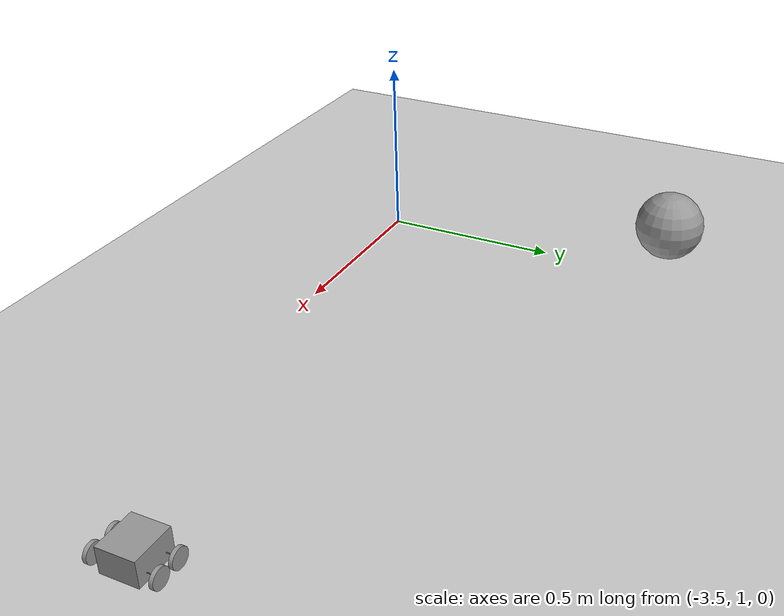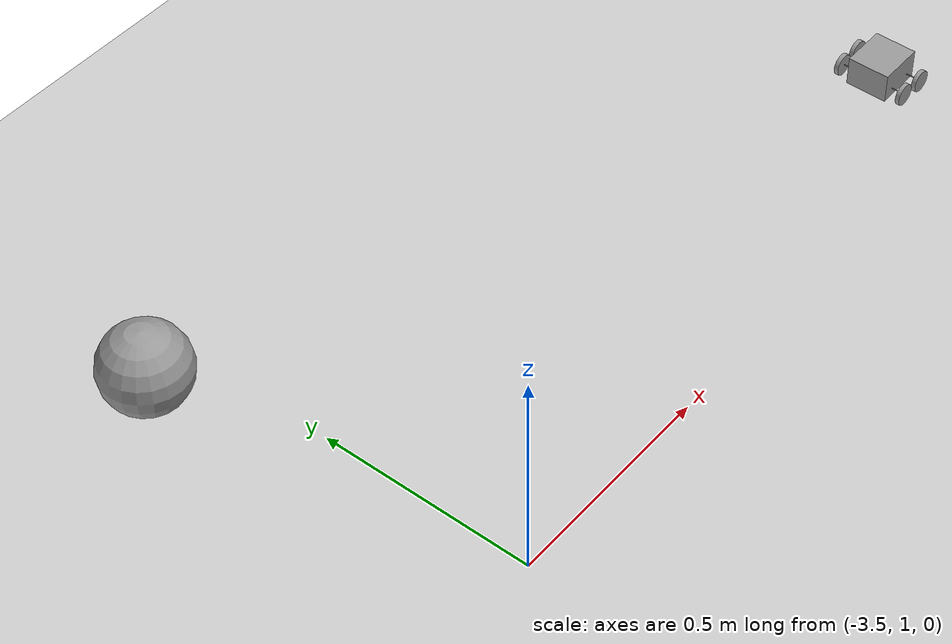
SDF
<sdf version="1.6">
 <world name="default">
  <model name="ground_plane">
   <static>1</static>
   <link name="link">
    <collision name="collision">
     <geometry><plane><normal>0 0 1</normal><size>100 100</size></plane></geometry>
     <surface>
      <contact><collide_bitmask>65535</collide_bitmask></contact>
      <friction><ode><mu>100</mu><mu2>50</mu2></ode></friction>
     </surface>
    </collision>
    <visual name="visual">
     <cast_shadows>0</cast_shadows>
     <geometry><plane><normal>0 0 1</normal><size>100 100</size></plane></geometry>
     <material>
      <script><uri>file://media/materials/scripts/gazebo.material</uri><name>Gazebo/Grey</name></script>
     </material>
    </visual>
   </link>
  </model>
  <model name="Scout">
   <link name="link_5">
    <pose>0.000124 0.000467 0.012036 0 1.5707 0</pose>
    <inertial>
     <mass>1</mass>
     <inertia>
      <ixx>0.166667</ixx>
      <ixy>0</ixy>
      <ixz>0</ixz>
      <iyy>0.166667</iyy>
      <iyz>0</iyz>
      <izz>0.166667</izz>
     </inertia>
    </inertial>
    <visual name="visual">
     <geometry><box><size>0.07 0.1 0.11</size></box></geometry>
     <material>
      <lighting>1</lighting>
      <script><uri>file://media/materials/scripts/gazebo.material</uri><name>Gazebo/Grey</name></script>
      <shader type="pixel"><normal_map>__default__</normal_map></shader>
      <ambient>0.3 0.3 0.3 1</ambient>
      <diffuse>0.7 0.7 0.7 1</diffuse>
      <specular>0.01 0.01 0.01 1</specular>
      <emissive>0 0 0 1</emissive>
     </material>
    </visual>
    <collision name="collision">
     <geometry><box><size>0.07 0.1 0.11</size></box></geometry>
     <surface>
      <friction>
       <ode><mu>1</mu><mu2>1</mu2><fdir1>0 0 0</fdir1><slip1>0</slip1><slip2>0</slip2></ode>
       <torsional>
        <coefficient>1</coefficient>
        <patch_radius>0</patch_radius>
        <surface_radius>0</surface_radius>
        <use_patch_radius>1</use_patch_radius>
        <ode><slip>0</slip></ode>
       </torsional>
      </friction>
      <bounce><restitution_coefficient>0</restitution_coefficient><threshold>1e+06</threshold></bounce>
      <contact>
       <collide_without_contact>0</collide_without_contact>
       <collide_without_contact_bitmask>1</collide_without_contact_bitmask>
       <collide_bitmask>1</collide_bitmask>
       <ode>
        <soft_cfm>0</soft_cfm>
        <soft_erp>0.2</soft_erp>
        <kp>1e+13</kp>
        <kd>1</kd>
        <max_vel>0.01</max_vel>
        <min_depth>0</min_depth>
       </ode>
       <bullet>
        <split_impulse>1</split_impulse>
        <split_impulse_penetration_threshold>-0.01</split_impulse_penetration_threshold>
        <soft_cfm>0</soft_cfm>
        <soft_erp>0.2</soft_erp>
        <kp>1e+13</kp>
        <kd>1</kd>
       </bullet>
      </contact>
     </surface>
    </collision>
   </link>
   <link name="link_6">
    <pose>0.030124 -0.082817 -0.002561 1.5707 -0 0</pose>
    <inertial>
     <mass>1</mass>
     <inertia><ixx>0.145833</ixx><ixy>0</ixy><ixz>0</ixz><iyy>0.145833</iyy><iyz>0</iyz><izz>0.125</izz></inertia>
    </inertial>
    <visual name="visual">
     <geometry><cylinder><radius>0.0254</radius><length>0.01</length></cylinder></geometry>
     <material>
      <lighting>1</lighting>
      <script><uri>file://media/materials/scripts/gazebo.material</uri><name>Gazebo/Grey</name></script>
      <shader type="pixel"><normal_map>__default__</normal_map></shader>
      <ambient>0.3 0.3 0.3 1</ambient>
      <diffuse>0.7 0.7 0.7 1</diffuse>
      <specular>0.01 0.01 0.01 1</specular>
      <emissive>0 0 0 1</emissive>
     </material>
    </visual>
    <collision name="collision">
     <geometry><cylinder><radius>0.0254</radius><length>0.01</length></cylinder></geometry>
     <surface>
      <friction>
       <ode><mu>1</mu><mu2>1</mu2><fdir1>0 0 0</fdir1><slip1>0</slip1><slip2>0</slip2></ode>
       <torsional>
        <coefficient>1</coefficient>
        <patch_radius>0</patch_radius>
        <surface_radius>0</surface_radius>
        <use_patch_radius>1</use_patch_radius>
        <ode><slip>0</slip></ode>
       </torsional>
      </friction>
      <bounce><restitution_coefficient>0</restitution_coefficient><threshold>1e+06</threshold></bounce>
      <contact>
       <collide_without_contact>0</collide_without_contact>
       <collide_without_contact_bitmask>1</collide_without_contact_bitmask>
       <collide_bitmask>1</collide_bitmask>
       <ode>
        <soft_cfm>0</soft_cfm>
        <soft_erp>0.2</soft_erp>
        <kp>1e+13</kp>
        <kd>1</kd>
        <max_vel>0.01</max_vel>
        <min_depth>0</min_depth>
       </ode>
       <bullet>
        <split_impulse>1</split_impulse>
        <split_impulse_penetration_threshold>-0.01</split_impulse_penetration_threshold>
        <soft_cfm>0</soft_cfm>
        <soft_erp>0.2</soft_erp>
        <kp>1e+13</kp>
        <kd>1</kd>
       </bullet>
      </contact>
     </surface>
    </collision>
   </link>
   <link name="link_6_clone">
    <pose>-0.029876 -0.079536 -0.002561 1.5707 -0 0</pose>
    <inertial>
     <mass>1</mass>
     <inertia><ixx>0.145833</ixx><ixy>0</ixy><ixz>0</ixz><iyy>0.145833</iyy><iyz>0</iyz><izz>0.125</izz></inertia>
    </inertial>
    <visual name="visual">
     <geometry><cylinder><radius>0.0254</radius><length>0.01</length></cylinder></geometry>
     <material>
      <lighting>1</lighting>
      <script><uri>file://media/materials/scripts/gazebo.material</uri><name>Gazebo/Grey</name></script>
      <shader type="pixel"><normal_map>__default__</normal_map></shader>
      <ambient>0.3 0.3 0.3 1</ambient>
      <diffuse>0.7 0.7 0.7 1</diffuse>
      <specular>0.01 0.01 0.01 1</specular>
      <emissive>0 0 0 1</emissive>
     </material>
    </visual>
    <collision name="collision">
     <geometry><cylinder><radius>0.0254</radius><length>0.01</length></cylinder></geometry>
     <surface>
      <friction>
       <ode><mu>1</mu><mu2>1</mu2><fdir1>0 0 0</fdir1><slip1>0</slip1><slip2>0</slip2></ode>
       <torsional>
        <coefficient>1</coefficient>
        <patch_radius>0</patch_radius>
        <surface_radius>0</surface_radius>
        <use_patch_radius>1</use_patch_radius>
        <ode><slip>0</slip></ode>
       </torsional>
      </friction>
      <bounce><restitution_coefficient>0</restitution_coefficient><threshold>1e+06</threshold></bounce>
      <contact>
       <collide_without_contact>0</collide_without_contact>
       <collide_without_contact_bitmask>1</collide_without_contact_bitmask>
       <collide_bitmask>1</collide_bitmask>
       <ode>
        <soft_cfm>0</soft_cfm>
        <soft_erp>0.2</soft_erp>
        <kp>1e+13</kp>
        <kd>1</kd>
        <max_vel>0.01</max_vel>
        <min_depth>0</min_depth>
       </ode>
       <bullet>
        <split_impulse>1</split_impulse>
        <split_impulse_penetration_threshold>-0.01</split_impulse_penetration_threshold>
        <soft_cfm>0</soft_cfm>
        <soft_erp>0.2</soft_erp>
        <kp>1e+13</kp>
        <kd>1</kd>
       </bullet>
      </contact>
     </surface>
    </collision>
   </link>
   <link name="link_6_clone_0">
    <pose>0.02967 0.080483 -0.002563 1.5707 -0 0</pose>
    <inertial>
     <mass>1</mass>
     <inertia><ixx>0.145833</ixx><ixy>0</ixy><ixz>0</ixz><iyy>0.145833</iyy><iyz>0</iyz><izz>0.125</izz></inertia>
    </inertial>
    <visual name="visual">
     <geometry><cylinder><radius>0.0254</radius><length>0.01</length></cylinder></geometry>
     <material>
      <lighting>1</lighting>
      <script><uri>file://media/materials/scripts/gazebo.material</uri><name>Gazebo/Grey</name></script>
      <shader type="pixel"><normal_map>__default__</normal_map></shader>
      <ambient>0.3 0.3 0.3 1</ambient>
      <diffuse>0.7 0.7 0.7 1</diffuse>
      <specular>0.01 0.01 0.01 1</specular>
      <emissive>0 0 0 1</emissive>
     </material>
    </visual>
    <collision name="collision">
     <geometry><cylinder><radius>0.0254</radius><length>0.01</length></cylinder></geometry>
     <surface>
      <friction>
       <ode><mu>1</mu><mu2>1</mu2><fdir1>0 0 0</fdir1><slip1>0</slip1><slip2>0</slip2></ode>
       <torsional>
        <coefficient>1</coefficient>
        <patch_radius>0</patch_radius>
        <surface_radius>0</surface_radius>
        <use_patch_radius>1</use_patch_radius>
        <ode><slip>0</slip></ode>
       </torsional>
      </friction>
      <bounce><restitution_coefficient>0</restitution_coefficient><threshold>1e+06</threshold></bounce>
      <contact>
       <collide_without_contact>0</collide_without_contact>
       <collide_without_contact_bitmask>1</collide_without_contact_bitmask>
       <collide_bitmask>1</collide_bitmask>
       <ode>
        <soft_cfm>0</soft_cfm>
        <soft_erp>0.2</soft_erp>
        <kp>1e+13</kp>
        <kd>1</kd>
        <max_vel>0.01</max_vel>
        <min_depth>0</min_depth>
       </ode>
       <bullet>
        <split_impulse>1</split_impulse>
        <split_impulse_penetration_threshold>-0.01</split_impulse_penetration_threshold>
        <soft_cfm>0</soft_cfm>
        <soft_erp>0.2</soft_erp>
        <kp>1e+13</kp>
        <kd>1</kd>
       </bullet>
      </contact>
     </surface>
    </collision>
   </link>
   <link name="link_6_clone_1">
    <pose>-0.029876 0.080469 -0.002563 1.5707 -0 0</pose>
    <inertial>
     <mass>1</mass>
     <inertia><ixx>0.145833</ixx><ixy>0</ixy><ixz>0</ixz><iyy>0.145833</iyy><iyz>0</iyz><izz>0.125</izz></inertia>
    </inertial>
    <visual name="visual">
     <geometry><cylinder><radius>0.0254</radius><length>0.01</length></cylinder></geometry>
     <material>
      <lighting>1</lighting>
      <script><uri>file://media/materials/scripts/gazebo.material</uri><name>Gazebo/Grey</name></script>
      <shader type="pixel"><normal_map>__default__</normal_map></shader>
      <ambient>0.3 0.3 0.3 1</ambient>
      <diffuse>0.7 0.7 0.7 1</diffuse>
      <specular>0.01 0.01 0.01 1</specular>
      <emissive>0 0 0 1</emissive>
     </material>
    </visual>
    <collision name="collision">
     <geometry><cylinder><radius>0.0254</radius><length>0.01</length></cylinder></geometry>
     <surface>
      <friction>
       <ode><mu>1</mu><mu2>1</mu2><fdir1>0 0 0</fdir1><slip1>0</slip1><slip2>0</slip2></ode>
       <torsional>
        <coefficient>1</coefficient>
        <patch_radius>0</patch_radius>
        <surface_radius>0</surface_radius>
        <use_patch_radius>1</use_patch_radius>
        <ode><slip>0</slip></ode>
       </torsional>
      </friction>
      <bounce><restitution_coefficient>0</restitution_coefficient><threshold>1e+06</threshold></bounce>
      <contact>
       <collide_without_contact>0</collide_without_contact>
       <collide_without_contact_bitmask>1</collide_without_contact_bitmask>
       <collide_bitmask>1</collide_bitmask>
       <ode>
        <soft_cfm>0</soft_cfm>
        <soft_erp>0.2</soft_erp>
        <kp>1e+13</kp>
        <kd>1</kd>
        <max_vel>0.01</max_vel>
        <min_depth>0</min_depth>
       </ode>
       <bullet>
        <split_impulse>1</split_impulse>
        <split_impulse_penetration_threshold>-0.01</split_impulse_penetration_threshold>
        <soft_cfm>0</soft_cfm>
        <soft_erp>0.2</soft_erp>
        <kp>1e+13</kp>
        <kd>1</kd>
       </bullet>
      </contact>
     </surface>
    </collision>
   </link>
   <link name="link_7">
    <pose>0.029712 0.000467 -0.000894 1.5707 -0 0</pose>
    <inertial>
     <mass>1</mass>
     <inertia><ixx>0.145833</ixx><ixy>0</ixy><ixz>0</ixz><iyy>0.145833</iyy><iyz>0</iyz><izz>0.125</izz></inertia>
    </inertial>
    <visual name="visual">
     <geometry><cylinder><radius>0.001</radius><length>0.15</length></cylinder></geometry>
     <material>
      <lighting>1</lighting>
      <script><uri>file://media/materials/scripts/gazebo.material</uri><name>Gazebo/Grey</name></script>
      <shader type="pixel"><normal_map>__default__</normal_map></shader>
      <ambient>0.3 0.3 0.3 1</ambient>
      <diffuse>0.7 0.7 0.7 1</diffuse>
      <specular>0.01 0.01 0.01 1</specular>
      <emissive>0 0 0 1</emissive>
     </material>
    </visual>
    <collision name="collision">
     <geometry><cylinder><radius>0.001</radius><length>0.15</length></cylinder></geometry>
     <surface>
      <friction>
       <ode><mu>1</mu><mu2>1</mu2><fdir1>0 0 0</fdir1><slip1>0</slip1><slip2>0</slip2></ode>
       <torsional>
        <coefficient>1</coefficient>
        <patch_radius>0</patch_radius>
        <surface_radius>0</surface_radius>
        <use_patch_radius>1</use_patch_radius>
        <ode><slip>0</slip></ode>
       </torsional>
      </friction>
      <bounce><restitution_coefficient>0</restitution_coefficient><threshold>1e+06</threshold></bounce>
      <contact>
       <collide_without_contact>0</collide_without_contact>
       <collide_without_contact_bitmask>1</collide_without_contact_bitmask>
       <collide_bitmask>1</collide_bitmask>
       <ode>
        <soft_cfm>0</soft_cfm>
        <soft_erp>0.2</soft_erp>
        <kp>1e+13</kp>
        <kd>1</kd>
        <max_vel>0.01</max_vel>
        <min_depth>0</min_depth>
       </ode>
       <bullet>
        <split_impulse>1</split_impulse>
        <split_impulse_penetration_threshold>-0.01</split_impulse_penetration_threshold>
        <soft_cfm>0</soft_cfm>
        <soft_erp>0.2</soft_erp>
        <kp>1e+13</kp>
        <kd>1</kd>
       </bullet>
      </contact>
     </surface>
    </collision>
   </link>
   <link name="link_7_clone">
    <pose>-0.029876 0.000467 -0.000894 1.5707 -0 0</pose>
    <inertial>
     <mass>1</mass>
     <inertia><ixx>0.145833</ixx><ixy>0</ixy><ixz>0</ixz><iyy>0.145833</iyy><iyz>0</iyz><izz>0.125</izz></inertia>
    </inertial>
    <visual name="visual">
     <geometry><cylinder><radius>0.001</radius><length>0.15</length></cylinder></geometry>
     <material>
      <lighting>1</lighting>
      <script><uri>file://media/materials/scripts/gazebo.material</uri><name>Gazebo/Grey</name></script>
      <shader type="pixel"><normal_map>__default__</normal_map></shader>
      <ambient>0.3 0.3 0.3 1</ambient>
      <diffuse>0.7 0.7 0.7 1</diffuse>
      <specular>0.01 0.01 0.01 1</specular>
      <emissive>0 0 0 1</emissive>
     </material>
    </visual>
    <collision name="collision">
     <geometry><cylinder><radius>0.001</radius><length>0.15</length></cylinder></geometry>
     <surface>
      <friction>
       <ode><mu>1</mu><mu2>1</mu2><fdir1>0 0 0</fdir1><slip1>0</slip1><slip2>0</slip2></ode>
       <torsional>
        <coefficient>1</coefficient>
        <patch_radius>0</patch_radius>
        <surface_radius>0</surface_radius>
        <use_patch_radius>1</use_patch_radius>
        <ode><slip>0</slip></ode>
       </torsional>
      </friction>
      <bounce><restitution_coefficient>0</restitution_coefficient><threshold>1e+06</threshold></bounce>
      <contact>
       <collide_without_contact>0</collide_without_contact>
       <collide_without_contact_bitmask>1</collide_without_contact_bitmask>
       <collide_bitmask>1</collide_bitmask>
       <ode>
        <soft_cfm>0</soft_cfm>
        <soft_erp>0.2</soft_erp>
        <kp>1e+13</kp>
        <kd>1</kd>
        <max_vel>0.01</max_vel>
        <min_depth>0</min_depth>
       </ode>
       <bullet>
        <split_impulse>1</split_impulse>
        <split_impulse_penetration_threshold>-0.01</split_impulse_penetration_threshold>
        <soft_cfm>0</soft_cfm>
        <soft_erp>0.2</soft_erp>
        <kp>1e+13</kp>
        <kd>1</kd>
       </bullet>
      </contact>
     </surface>
    </collision>
   </link>
   <joint name="link_5_JOINT_13" type="fixed">
    <parent>link_5</parent>
    <child>link_7</child>
    <physics>
     <ode><limit><cfm>0</cfm><erp>0.2</erp></limit><suspension><cfm>0</cfm><erp>0.2</erp></suspension></ode>
    </physics>
   </joint>
   <joint name="link_5_JOINT_14" type="fixed">
    <parent>link_5</parent>
    <child>link_7_clone</child>
    <physics>
     <ode><limit><cfm>0</cfm><erp>0.2</erp></limit><suspension><cfm>0</cfm><erp>0.2</erp></suspension></ode>
    </physics>
   </joint>
   <joint name="link_7_JOINT_12" type="revolute">
    <parent>link_7</parent>
    <child>link_6</child>
    <axis>
     <xyz>1 0 0</xyz>
     <use_parent_model_frame>0</use_parent_model_frame>
     <limit>
      <lower>-1.79769e+308</lower>
      <upper>1.79769e+308</upper>
      <effort>-1</effort>
      <velocity>-1</velocity>
     </limit>
     <dynamics>
      <spring_reference>0</spring_reference>
      <spring_stiffness>0</spring_stiffness>
      <damping>0</damping>
     </dynamics>
    </axis>
    <physics>
     <ode><limit><cfm>0</cfm><erp>0.2</erp></limit><suspension><cfm>0</cfm><erp>0.2</erp></suspension></ode>
    </physics>
   </joint>
   <joint name="link_7_JOINT_8" type="revolute">
    <parent>link_7</parent>
    <child>link_6_clone_0</child>
    <axis>
     <xyz>1 0 0</xyz>
     <use_parent_model_frame>0</use_parent_model_frame>
     <limit>
      <lower>-1.79769e+308</lower>
      <upper>1.79769e+308</upper>
      <effort>-1</effort>
      <velocity>-1</velocity>
     </limit>
     <dynamics>
      <spring_reference>0</spring_reference>
      <spring_stiffness>0</spring_stiffness>
      <damping>0</damping>
      <friction>0</friction>
     </dynamics>
    </axis>
    <physics>
     <ode><limit><cfm>0</cfm><erp>0.2</erp></limit><suspension><cfm>0</cfm><erp>0.2</erp></suspension></ode>
    </physics>
   </joint>
   <joint name="link_7_clone_JOINT_10" type="revolute">
    <parent>link_7_clone</parent>
    <child>link_6_clone_1</child>
    <axis>
     <xyz>1 0 0</xyz>
     <use_parent_model_frame>0</use_parent_model_frame>
     <limit>
      <lower>-1.79769e+308</lower>
      <upper>1.79769e+308</upper>
      <effort>-1</effort>
      <velocity>-1</velocity>
     </limit>
     <dynamics>
      <spring_reference>0</spring_reference>
      <spring_stiffness>0</spring_stiffness>
      <damping>0</damping>
      <friction>0</friction>
     </dynamics>
    </axis>
    <physics>
     <ode><limit><cfm>0</cfm><erp>0.2</erp></limit><suspension><cfm>0</cfm><erp>0.2</erp></suspension></ode>
    </physics>
   </joint>
   <joint name="link_7_clone_JOINT_11" type="revolute">
    <parent>link_7_clone</parent>
    <child>link_6_clone</child>
    <axis>
     <xyz>1 0 0</xyz>
     <use_parent_model_frame>0</use_parent_model_frame>
     <limit>
      <lower>-1.79769e+308</lower>
      <upper>1.79769e+308</upper>
      <effort>-1</effort>
      <velocity>-1</velocity>
     </limit>
     <dynamics>
      <spring_reference>0</spring_reference>
      <spring_stiffness>0</spring_stiffness>
      <damping>0</damping>
     </dynamics>
    </axis>
    <physics>
     <ode><limit><cfm>0</cfm><erp>0.2</erp></limit><suspension><cfm>0</cfm><erp>0.2</erp></suspension></ode>
    </physics>
   </joint>
   <static>0</static>
   <pose>-1.95468 1.23449 0.027961 2.5e-05 3.6e-05 -0.001236</pose>
  </model>
  <model name="my_ball">
   <link name="link_0">
    <inertial>
     <mass>1</mass>
     <inertia><ixx>0.1</ixx><ixy>0</ixy><ixz>0</ixz><iyy>0.1</iyy><iyz>0</iyz><izz>0.1</izz></inertia>
    </inertial>
    <visual name="visual">
     <geometry><sphere><radius>0.1</radius></sphere></geometry>
     <material>
      <lighting>1</lighting>
      <script><uri>file://media/materials/scripts/gazebo.material</uri><name>Gazebo/Grey</name></script>
      <shader type="pixel"><normal_map>__default__</normal_map></shader>
      <ambient>1 1 1 1</ambient>
      <diffuse>1 1 1 1</diffuse>
      <specular>1 1 1 1</specular>
      <emissive>1 1 1 1</emissive>
     </material>
    </visual>
    <collision name="collision">
     <geometry><sphere><radius>0.1</radius></sphere></geometry>
     <surface>
      <friction>
       <ode><mu>1</mu><mu2>1</mu2><fdir1>0 0 0</fdir1><slip1>0</slip1><slip2>0</slip2></ode>
       <torsional>
        <coefficient>1</coefficient>
        <patch_radius>0</patch_radius>
        <surface_radius>0</surface_radius>
        <use_patch_radius>1</use_patch_radius>
        <ode><slip>0</slip></ode>
       </torsional>
      </friction>
      <bounce><restitution_coefficient>0</restitution_coefficient><threshold>1e+06</threshold></bounce>
      <contact>
       <collide_without_contact>0</collide_without_contact>
       <collide_without_contact_bitmask>1</collide_without_contact_bitmask>
       <collide_bitmask>1</collide_bitmask>
       <ode>
        <soft_cfm>0</soft_cfm>
        <soft_erp>0.2</soft_erp>
        <kp>1e+13</kp>
        <kd>1</kd>
        <max_vel>0.01</max_vel>
        <min_depth>0</min_depth>
       </ode>
       <bullet>
        <split_impulse>1</split_impulse>
        <split_impulse_penetration_threshold>-0.01</split_impulse_penetration_threshold>
        <soft_cfm>0</soft_cfm>
        <soft_erp>0.2</soft_erp>
        <kp>1e+13</kp>
        <kd>1</kd>
       </bullet>
      </contact>
     </surface>
    </collision>
   </link>
   <static>0</static>
   <pose>-3.64349 1.83295 0.1 0 -0 0</pose>
  </model>
 </world>
</sdf>
